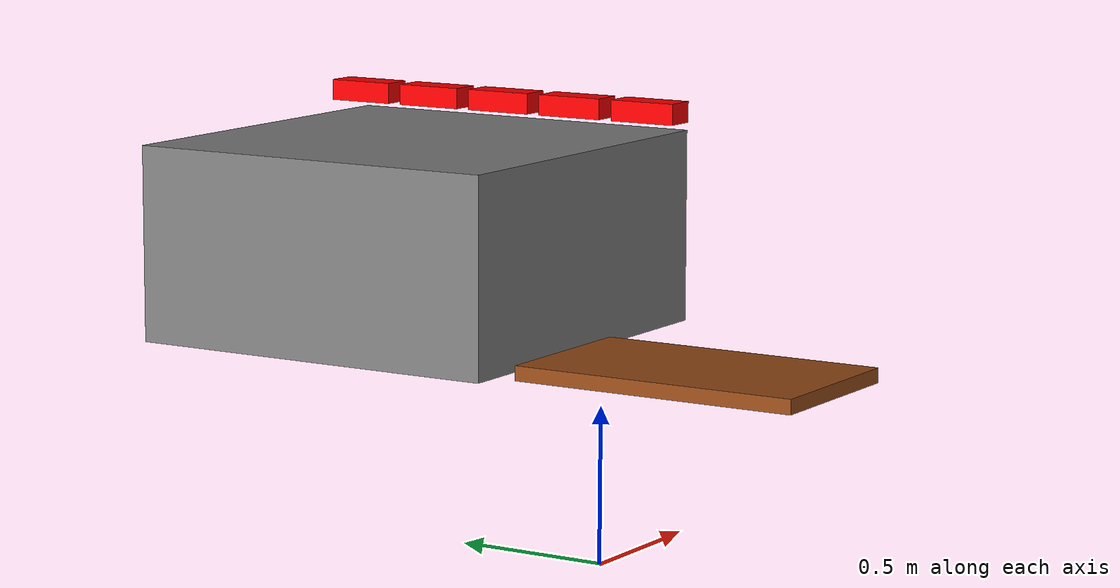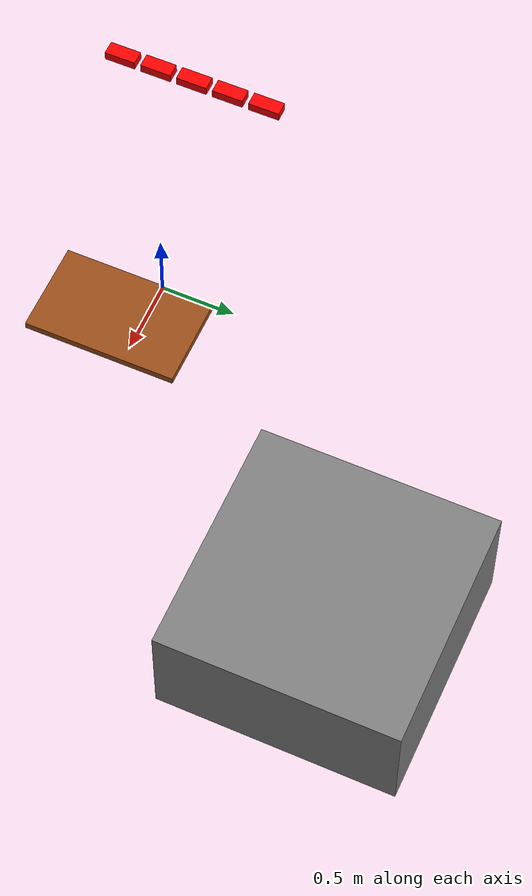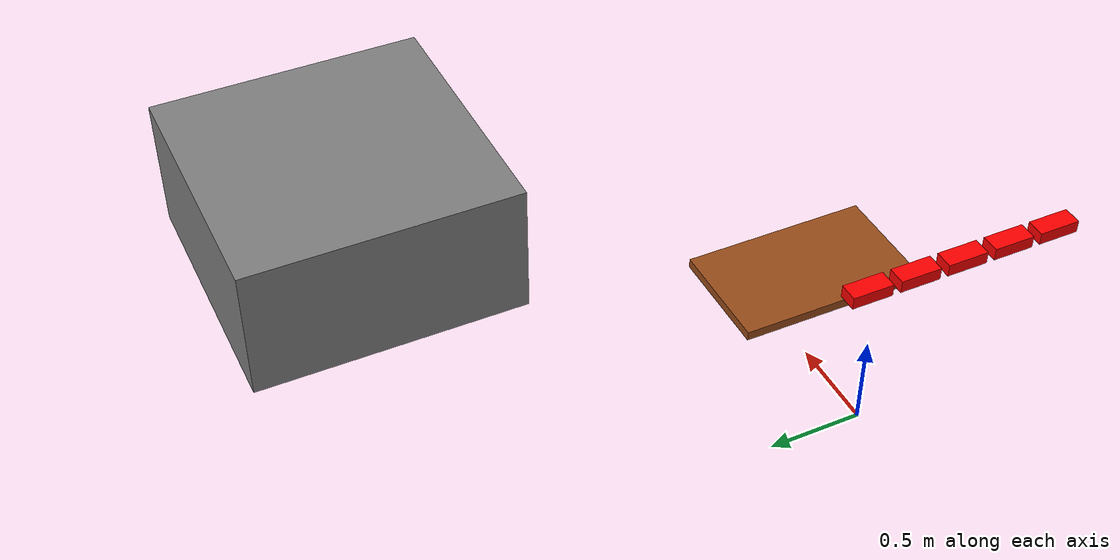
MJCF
<mujoco model="bricklaying_props">
  <include file="table.xml"/>
  <compiler angle="radian" meshdir="meshes" />
  <option noslip_iterations="5"> </option>

  <worldbody>
    <body name="cube" pos="2 2 0.6">
      <geom type="box" name="my_box" size="0.75 0.75 0.375"/>
    </body>

    <body name="brick_0" pos="-0.55 -0.48 1.5">
      <joint name="brick_0_joint" type="free" limited="false" actuatorfrclimited="false" />
      <geom type="box" name="brick_0" size="0.045 0.1 0.03" rgba="1 0 0 1" mass="0.08" friction="2.0 0.5 0.01" solref="0.004 1" solimp="0.99 0.995 0.0001 0.5 2"/>
    </body>

    <body name="brick_1" pos="-0.55 -0.24 1.5">
      <joint name="brick_1_joint" type="free" limited="false" actuatorfrclimited="false" />
      <geom type="box" name="brick_1" size="0.045 0.1 0.03" rgba="1 0 0 1" mass="0.08" friction="2.0 0.5 0.01" solref="0.004 1" solimp="0.99 0.995 0.0001 0.5 2"/>
    </body>

    <body name="brick_2" pos="-0.55 0 1.5">
      <joint name="brick_2_joint" type="free" limited="false" actuatorfrclimited="false" />
      <geom type="box" name="brick_2" size="0.045 0.1 0.03" rgba="1 0 0 1" mass="0.08" friction="2.0 0.5 0.01" solref="0.004 1" solimp="0.99 0.995 0.0001 0.5 2"/>
    </body>

    <body name="brick_3" pos="-0.55 0.24 1.5">
      <joint name="brick_3_joint" type="free" limited="false" actuatorfrclimited="false" />
      <geom type="box" name="brick_3" size="0.045 0.1 0.03" rgba="1 0 0 1" mass="0.08" friction="2.0 0.5 0.01" solref="0.004 1" solimp="0.99 0.995 0.0001 0.5 2"/>
    </body>

    <body name="brick_4" pos="-0.55 0.48 1.5">
      <joint name="brick_4_joint" type="free" limited="false" actuatorfrclimited="false" />
      <geom type="box" name="brick_4" size="0.045 0.1 0.03" rgba="1 0 0 1" mass="0.08" friction="2.0 0.5 0.01" solref="0.004 1" solimp="0.99 0.995 0.0001 0.5 2"/>
    </body>

  </worldbody>
</mujoco>

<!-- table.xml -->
<mujoco model="table">
  <worldbody>
    <body name="table" pos="0.6 0 0.25"> <!-- center of table at half the height -->
      <geom name="table_top" type="box" size="0.3 0.5 0.025" pos="0 0 0.25"
            rgba="0.6 0.3 0.1 1" contype="1" conaffinity="1" friction="1 0.01 0.001"/>
    </body>
  </worldbody>
</mujoco>
